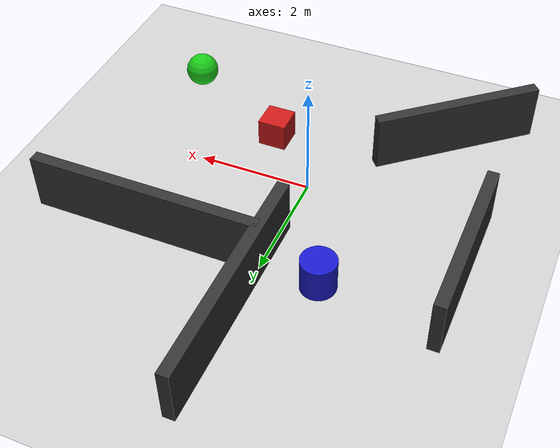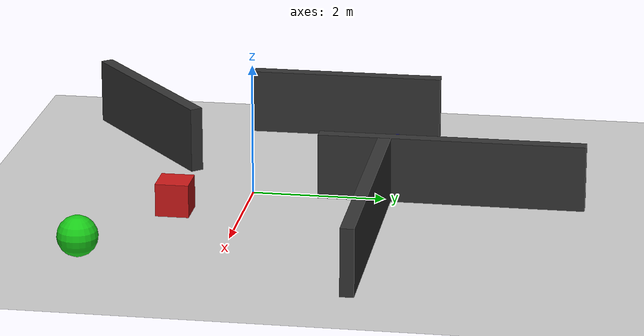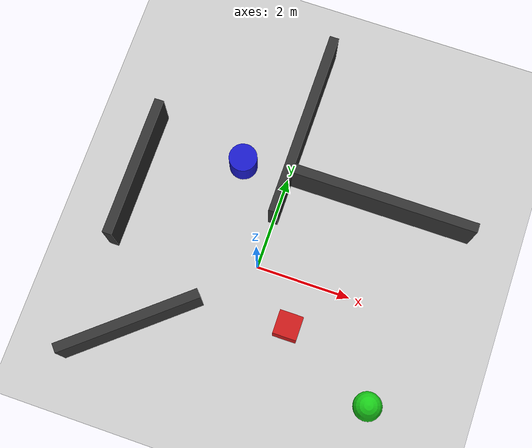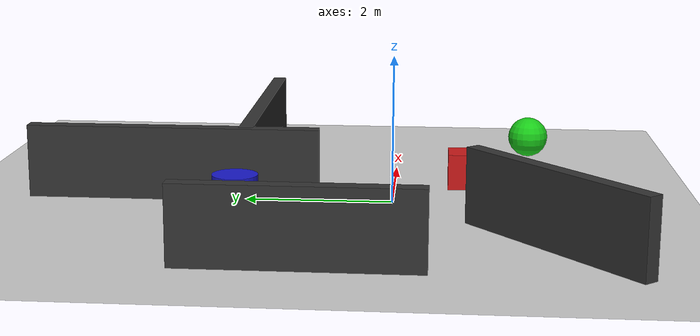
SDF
<?xml version="1.0" ?>
<sdf version="1.6">
  <world name="unknown_environment">
    <!-- A global light source -->
    <light type="directional" name="sun">
      <cast_shadows>true</cast_shadows>
      <pose>0 0 10 0 0 0</pose>
      <diffuse>0.8 0.8 0.8 1</diffuse>
      <specular>0.2 0.2 0.2 1</specular>
      <direction>-0.5 0.1 -0.9</direction>
    </light>

    <!-- A ground plane -->
    <model name="ground_plane">
      <static>true</static>
      <link name="link">
        <collision name="collision">
          <geometry>
            <plane>
              <normal>0 0 1</normal>
              <size>100 100</size>
            </plane>
          </geometry>
        </collision>
        <visual name="visual">
          <geometry>
            <plane>
              <normal>0 0 1</normal>
              <size>100 100</size>
            </plane>
          </geometry>
          <material>
            <ambient>0.8 0.8 0.8 1</ambient>
            <diffuse>0.8 0.8 0.8 1</diffuse>
            <specular>0.8 0.8 0.8 1</specular>
          </material>
        </visual>
      </link>
    </model>

    <!-- Walls to create a maze-like environment -->
    <!-- Wall 1 -->
    <model name="wall1">
      <static>true</static>
      <pose>2 2 0.5 0 0 0</pose>
      <link name="link">
        <collision name="collision">
          <geometry>
            <box>
              <size>4 0.2 1</size>
            </box>
          </geometry>
        </collision>
        <visual name="visual">
          <geometry>
            <box>
              <size>4 0.2 1</size>
            </box>
          </geometry>
          <material>
            <ambient>0.2 0.2 0.2 1</ambient>
            <diffuse>0.2 0.2 0.2 1</diffuse>
          </material>
        </visual>
      </link>
    </model>

    <!-- Wall 2 -->
    <model name="wall2">
      <static>true</static>
      <pose>-2 -2 0.5 0 0 0.7</pose>
      <link name="link">
        <collision name="collision">
          <geometry>
            <box>
              <size>3 0.2 1</size>
            </box>
          </geometry>
        </collision>
        <visual name="visual">
          <geometry>
            <box>
              <size>3 0.2 1</size>
            </box>
          </geometry>
          <material>
            <ambient>0.2 0.2 0.2 1</ambient>
            <diffuse>0.2 0.2 0.2 1</diffuse>
          </material>
        </visual>
      </link>
    </model>

    <!-- Wall 3 -->
    <model name="wall3">
      <static>true</static>
      <pose>0 3 0.5 0 0 1.57</pose>
      <link name="link">
        <collision name="collision">
          <geometry>
            <box>
              <size>4 0.2 1</size>
            </box>
          </geometry>
        </collision>
        <visual name="visual">
          <geometry>
            <box>
              <size>4 0.2 1</size>
            </box>
          </geometry>
          <material>
            <ambient>0.2 0.2 0.2 1</ambient>
            <diffuse>0.2 0.2 0.2 1</diffuse>
          </material>
        </visual>
      </link>
    </model>

    <!-- Wall 4 -->
    <model name="wall4">
      <static>true</static>
      <pose>-3 1 0.5 0 0 1.57</pose>
      <link name="link">
        <collision name="collision">
          <geometry>
            <box>
              <size>3 0.2 1</size>
            </box>
          </geometry>
        </collision>
        <visual name="visual">
          <geometry>
            <box>
              <size>3 0.2 1</size>
            </box>
          </geometry>
          <material>
            <ambient>0.2 0.2 0.2 1</ambient>
            <diffuse>0.2 0.2 0.2 1</diffuse>
          </material>
        </visual>
      </link>
    </model>

    <!-- Obstacle 1: Box -->
    <model name="box1">
      <static>true</static>
      <pose>1 -1 0.25 0 0 0</pose>
      <link name="link">
        <collision name="collision">
          <geometry>
            <box>
              <size>0.5 0.5 0.5</size>
            </box>
          </geometry>
        </collision>
        <visual name="visual">
          <geometry>
            <box>
              <size>0.5 0.5 0.5</size>
            </box>
          </geometry>
          <material>
            <ambient>0.8 0.1 0.1 1</ambient>
            <diffuse>0.8 0.1 0.1 1</diffuse>
          </material>
        </visual>
      </link>
    </model>

    <!-- Obstacle 2: Cylinder -->
    <model name="cylinder1">
      <static>true</static>
      <pose>-1 2 0.3 0 0 0</pose>
      <link name="link">
        <collision name="collision">
          <geometry>
            <cylinder>
              <radius>0.3</radius>
              <length>0.6</length>
            </cylinder>
          </geometry>
        </collision>
        <visual name="visual">
          <geometry>
            <cylinder>
              <radius>0.3</radius>
              <length>0.6</length>
            </cylinder>
          </geometry>
          <material>
            <ambient>0.1 0.1 0.8 1</ambient>
            <diffuse>0.1 0.1 0.8 1</diffuse>
          </material>
        </visual>
      </link>
    </model>

    <!-- Obstacle 3: Sphere -->
    <model name="sphere1">
      <static>true</static>
      <pose>3 -2 0.3 0 0 0</pose>
      <link name="link">
        <collision name="collision">
          <geometry>
            <sphere>
              <radius>0.3</radius>
            </sphere>
          </geometry>
        </collision>
        <visual name="visual">
          <geometry>
            <sphere>
              <radius>0.3</radius>
            </sphere>
          </geometry>
          <material>
            <ambient>0.1 0.8 0.1 1</ambient>
            <diffuse>0.1 0.8 0.1 1</diffuse>
          </material>
        </visual>
      </link>
    </model>

    <!-- Physics settings -->
    <physics type="ode">
      <real_time_update_rate>1000.0</real_time_update_rate>
      <max_step_size>0.001</max_step_size>
      <real_time_factor>1</real_time_factor>
      <ode>
        <solver>
          <type>quick</type>
          <iters>150</iters>
          <precon_iters>0</precon_iters>
          <sor>1.400000</sor>
          <use_dynamic_moi_rescaling>1</use_dynamic_moi_rescaling>
        </solver>
        <constraints>
          <cfm>0.00001</cfm>
          <erp>0.2</erp>
          <contact_max_correcting_vel>2000.000000</contact_max_correcting_vel>
          <contact_surface_layer>0.01000</contact_surface_layer>
        </constraints>
      </ode>
    </physics>
  </world>
</sdf>
